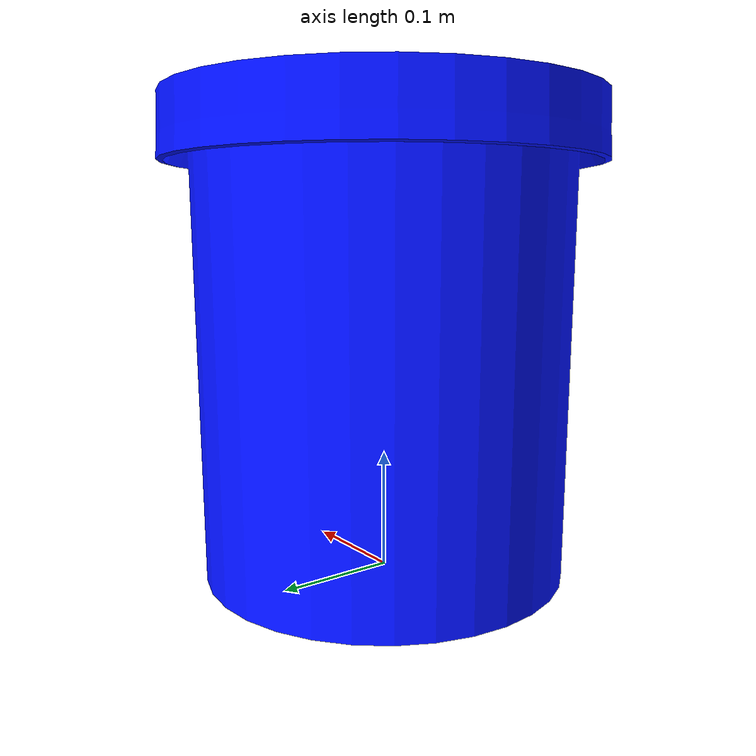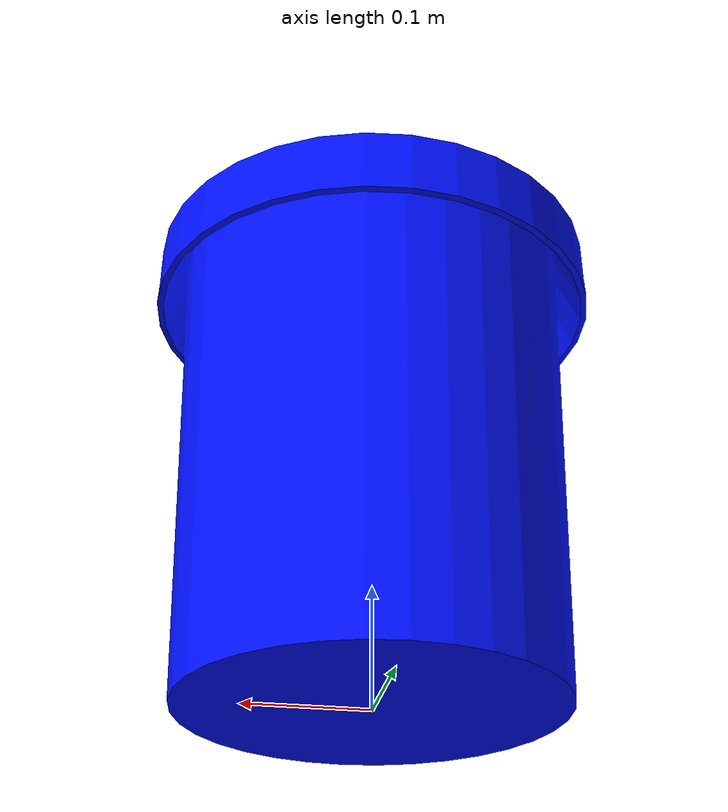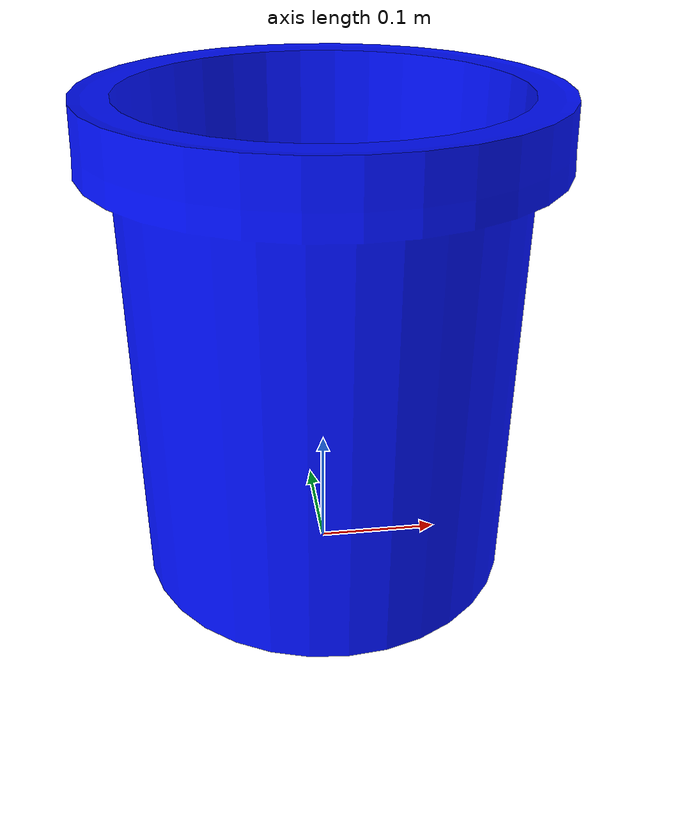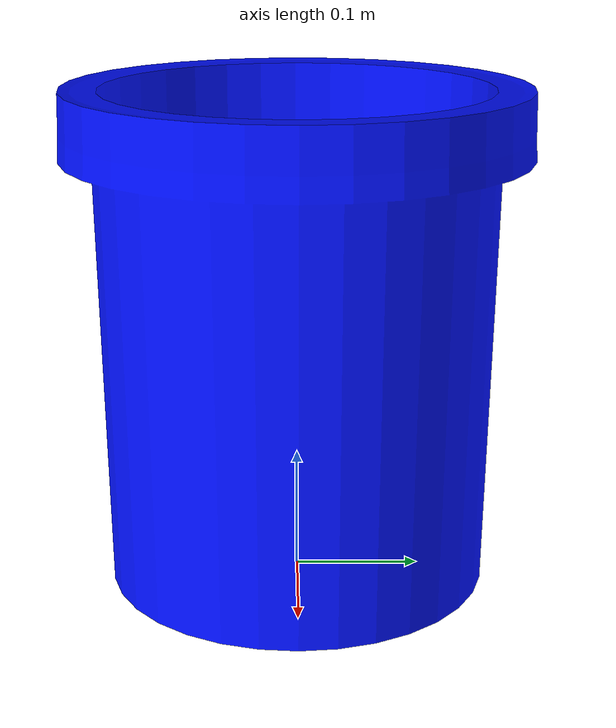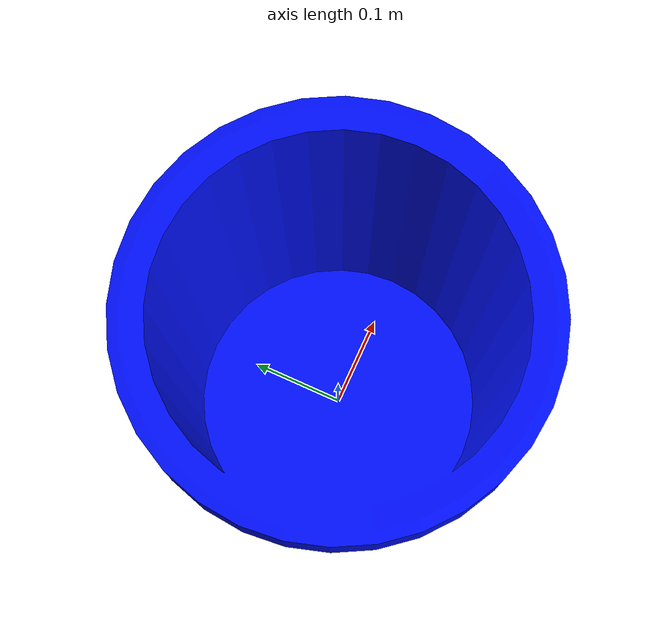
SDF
<?xml version="1.0" ?>
<sdf version="1.6">
  <model name="clf_bin">
    <static>false</static>
    <link name="link">
      <collision name="collision">
        <geometry>
          <mesh>
            <uri>model://clf_bin/meshes/clf_bin.dae</uri>
          </mesh>
        </geometry>
      </collision>
      <visual name="visual">
        <material>
          <ambient>0 0.06 1 1</ambient>
          <diffuse>0 0.06 1 1</diffuse>
          <specular>0 0 0 0</specular>
          <emissive>0 0 0 1</emissive>
        </material>
        <geometry>
          <mesh>
            <uri>model://clf_bin/meshes/clf_bin.dae</uri>
          </mesh>
        </geometry>
      </visual>
    </link>
  </model>
</sdf>
